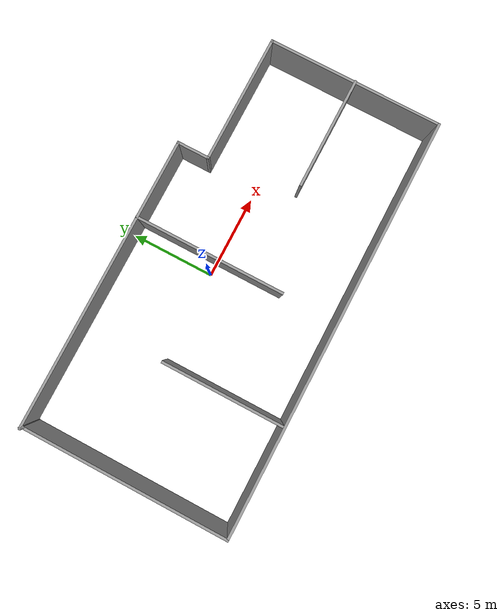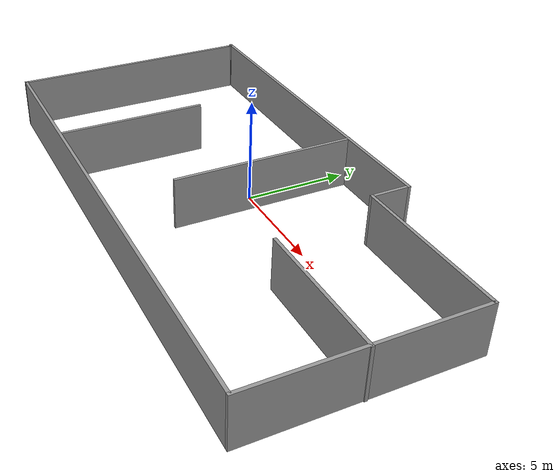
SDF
<?xml version='1.0'?>
<sdf version='1.7'>
  <model name='Untitled'>
    <pose>0.571544 -1.28396 0 0 -0 0</pose>
    <link name='Wall_10'>
      <collision name='Wall_10_Collision'>
        <geometry>
          <box>
            <size>7.25 0.15 2.5</size>
          </box>
        </geometry>
        <pose>0 0 1.25 0 -0 0</pose>
      </collision>
      <visual name='Wall_10_Visual'>
        <pose>0 0 1.25 0 -0 0</pose>
        <geometry>
          <box>
            <size>7.25 0.15 2.5</size>
          </box>
        </geometry>
        <material>
          <script>
            <uri>file://media/materials/scripts/gazebo.material</uri>
            <name>Gazebo/Grey</name>
          </script>
          <ambient>1 1 1 1</ambient>
        </material>
        <meta>
          <layer>0</layer>
        </meta>
      </visual>
      <pose>-6.01359 -2.4202 0 0 -0 -1.5708</pose>
    </link>
    <link name='Wall_12'>
      <collision name='Wall_12_Collision'>
        <geometry>
          <box>
            <size>9 0.15 2.5</size>
          </box>
        </geometry>
        <pose>0 0 1.25 0 -0 0</pose>
      </collision>
      <visual name='Wall_12_Visual'>
        <pose>0 0 1.25 0 -0 0</pose>
        <geometry>
          <box>
            <size>9 0.15 2.5</size>
          </box>
        </geometry>
        <material>
          <script>
            <uri>file://media/materials/scripts/gazebo.material</uri>
            <name>Gazebo/Grey</name>
          </script>
          <ambient>1 1 1 1</ambient>
        </material>
        <meta>
          <layer>0</layer>
        </meta>
      </visual>
      <pose>0.177873 1.665 0 0 -0 -1.5708</pose>
    </link>
    <link name='Wall_14'>
      <collision name='Wall_14_Collision'>
        <geometry>
          <box>
            <size>6.75 0.15 2.5</size>
          </box>
        </geometry>
        <pose>0 0 1.25 0 -0 0</pose>
      </collision>
      <visual name='Wall_14_Visual'>
        <pose>0 0 1.25 0 -0 0</pose>
        <geometry>
          <box>
            <size>6.75 0.15 2.5</size>
          </box>
        </geometry>
        <material>
          <script>
            <uri>file://media/materials/scripts/gazebo.material</uri>
            <name>Gazebo/Grey</name>
          </script>
          <ambient>1 1 1 1</ambient>
        </material>
        <meta>
          <layer>0</layer>
        </meta>
      </visual>
      <pose>9.21201 -0.945749 0 0 -0 0</pose>
    </link>
    <link name='Wall_2'>
      <collision name='Wall_2_Collision'>
        <geometry>
          <box>
            <size>12.25 0.15 2.5</size>
          </box>
        </geometry>
        <pose>0 0 1.25 0 -0 0</pose>
      </collision>
      <visual name='Wall_2_Visual'>
        <pose>0 0 1.25 0 -0 0</pose>
        <geometry>
          <box>
            <size>12.25 0.15 2.5</size>
          </box>
        </geometry>
        <material>
          <script>
            <uri>file://media/materials/scripts/gazebo.material</uri>
            <name>Gazebo/Grey</name>
          </script>
          <ambient>1 1 1 1</ambient>
        </material>
        <meta>
          <layer>0</layer>
        </meta>
      </visual>
      <pose>-12.3809 -0.065533 0 0 -0 -1.5708</pose>
    </link>
    <link name='Wall_3'>
      <collision name='Wall_3_Collision'>
        <geometry>
          <box>
            <size>25 0.15 2.5</size>
          </box>
        </geometry>
        <pose>0 0 1.25 0 -0 0</pose>
      </collision>
      <visual name='Wall_3_Visual'>
        <pose>0 0 1.25 0 -0 0</pose>
        <geometry>
          <box>
            <size>25 0.15 2.5</size>
          </box>
        </geometry>
        <material>
          <script>
            <uri>file://media/materials/scripts/gazebo.material</uri>
            <name>Gazebo/Grey</name>
          </script>
          <ambient>1 1 1 1</ambient>
        </material>
        <meta>
          <layer>0</layer>
        </meta>
      </visual>
      <pose>0.044054 -6.11553 0 0 -0 0</pose>
    </link>
    <link name='Wall_4'>
      <collision name='Wall_4_Collision'>
        <geometry>
          <box>
            <size>10.5 0.15 2.5</size>
          </box>
        </geometry>
        <pose>0 0 1.25 0 -0 0</pose>
      </collision>
      <visual name='Wall_4_Visual'>
        <pose>0 0 1.25 0 -0 0</pose>
        <geometry>
          <box>
            <size>10.5 0.15 2.5</size>
          </box>
        </geometry>
        <material>
          <script>
            <uri>file://media/materials/scripts/gazebo.material</uri>
            <name>Gazebo/Grey</name>
          </script>
          <ambient>1 1 1 1</ambient>
        </material>
        <meta>
          <layer>0</layer>
        </meta>
      </visual>
      <pose>12.4691 -0.940533 0 0 -0 1.5708</pose>
    </link>
    <link name='Wall_5'>
      <collision name='Wall_5_Collision'>
        <geometry>
          <box>
            <size>7.75 0.15 2.5</size>
          </box>
        </geometry>
        <pose>0 0 1.25 0 -0 0</pose>
      </collision>
      <visual name='Wall_5_Visual'>
        <pose>0 0 1.25 0 -0 0</pose>
        <geometry>
          <box>
            <size>7.75 0.15 2.5</size>
          </box>
        </geometry>
        <material>
          <script>
            <uri>file://media/materials/scripts/gazebo.material</uri>
            <name>Gazebo/Grey</name>
          </script>
          <ambient>1 1 1 1</ambient>
        </material>
        <meta>
          <layer>0</layer>
        </meta>
      </visual>
      <pose>8.66905 4.23447 0 0 -0 3.14159</pose>
    </link>
    <link name='Wall_6'>
      <collision name='Wall_6_Collision'>
        <geometry>
          <box>
            <size>2 0.15 2.5</size>
          </box>
        </geometry>
        <pose>0 0 1.25 0 -0 0</pose>
      </collision>
      <visual name='Wall_6_Visual'>
        <pose>0 0 1.25 0 -0 0</pose>
        <geometry>
          <box>
            <size>2 0.15 2.5</size>
          </box>
        </geometry>
        <material>
          <script>
            <uri>file://media/materials/scripts/gazebo.material</uri>
            <name>Gazebo/Grey</name>
          </script>
          <ambient>1 1 1 1</ambient>
        </material>
        <meta>
          <layer>0</layer>
        </meta>
      </visual>
      <pose>4.86905 5.15947 0 0 -0 1.5708</pose>
    </link>
    <link name='Wall_7'>
      <collision name='Wall_7_Collision'>
        <geometry>
          <box>
            <size>17.5 0.15 2.5</size>
          </box>
        </geometry>
        <pose>0 0 1.25 0 -0 0</pose>
      </collision>
      <visual name='Wall_7_Visual'>
        <pose>0 0 1.25 0 -0 0</pose>
        <geometry>
          <box>
            <size>17.5 0.15 2.5</size>
          </box>
        </geometry>
        <material>
          <script>
            <uri>file://media/materials/scripts/gazebo.material</uri>
            <name>Gazebo/Grey</name>
          </script>
          <ambient>1 1 1 1</ambient>
        </material>
        <meta>
          <layer>0</layer>
        </meta>
      </visual>
      <pose>-3.80595 6.08447 0 0 -0 3.14159</pose>
    </link>
    <link name='Wall_8'>
      <collision name='Wall_8_Collision'>
        <geometry>
          <box>
            <size>0.291421 0.15 2.5</size>
          </box>
        </geometry>
        <pose>0 0 1.25 0 -0 0</pose>
      </collision>
      <visual name='Wall_8_Visual'>
        <pose>0 0 1.25 0 -0 0</pose>
        <geometry>
          <box>
            <size>0.291421 0.15 2.5</size>
          </box>
        </geometry>
        <material>
          <script>
            <uri>file://media/materials/scripts/gazebo.material</uri>
            <name>Gazebo/Grey</name>
          </script>
          <ambient>1 1 1 1</ambient>
        </material>
        <meta>
          <layer>0</layer>
        </meta>
      </visual>
      <pose>-12.4309 6.03447 0 0 -0 -0.785398</pose>
    </link>
    <static>1</static>
  </model>
</sdf>
